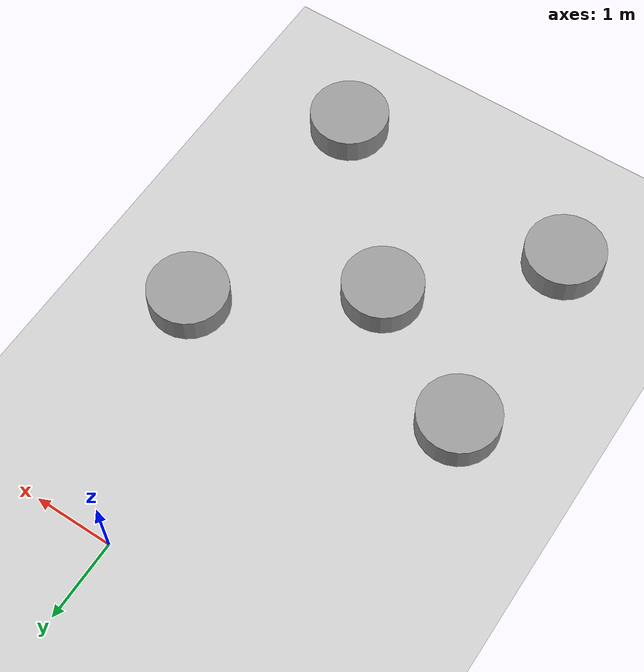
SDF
<sdf version="1.6">
 <world name="default">
  <light name="sun" type="directional">
   <pose>0 0 10 0 -0 0</pose>
   <diffuse>0.8 0.8 0.8 1</diffuse>
   <specular>0.2 0.2 0.2 1</specular>
   <attenuation>
    <range>1000</range>
    <constant>0.9</constant>
    <linear>0.01</linear>
    <quadratic>0.001</quadratic>
   </attenuation>
   <direction>0 0.5 -0.9</direction>
  </light>
  <light name="point_light" type="point">
   <pose>0 -0.377195 6.59868 0 -0 0</pose>
   <diffuse>0.784314 0.784314 0.784314 1</diffuse>
   <specular>0.0980392 0.0980392 0.0980392 1</specular>
   <attenuation>
    <range>50</range>
    <constant>0.8</constant>
    <linear>0</linear>
    <quadratic>0.001</quadratic>
   </attenuation>
   <cast_shadows>0</cast_shadows>
   <direction>0 0 -1</direction>
  </light>
  <physics name="default_physics" default="0" type="ode">
   <real_time_update_rate>7</real_time_update_rate>
   <max_step_size>0.005</max_step_size>
   <real_time_factor>1</real_time_factor>
   <ode>
    <solver>
     <type>quick</type>
     <iters>150</iters>
     <precon_iters>0</precon_iters>
     <sor>1.4</sor>
     <use_dynamic_moi_rescaling>1</use_dynamic_moi_rescaling>
    </solver>
    <constraints>
     <cfm>1e-05</cfm>
     <erp>0.2</erp>
     <contact_max_correcting_vel>2000</contact_max_correcting_vel>
     <contact_surface_layer>0.01</contact_surface_layer>
    </constraints>
   </ode>
  </physics>
  <model name="ground_plane">
   <static>1</static>
   <link name="link">
    <collision name="collision">
     <geometry><plane><normal>0 0 1</normal><size>100 100</size></plane></geometry>
     <surface>
      <contact><collide_bitmask>65535</collide_bitmask></contact>
      <friction><ode><mu>100</mu><mu2>50</mu2></ode></friction>
     </surface>
    </collision>
    <visual name="visual">
     <cast_shadows>0</cast_shadows>
     <geometry><plane><normal>0 0 1</normal><size>100 100</size></plane></geometry>
     <material>
      <script><uri>file://media/materials/scripts/gazebo.material</uri><name>Gazebo/Grey</name></script>
     </material>
    </visual>
   </link>
  </model>
  <gravity>0 0 -9.8</gravity>
  <magnetic_field>6e-06 2.3e-05 -4.2e-05</magnetic_field>
  <atmosphere type="adiabatic"/>
  <scene><ambient>0.4 0.4 0.4 1</ambient><background>0.7 0.7 0.7 1</background><shadows>1</shadows></scene>
  <audio><device>default</device></audio>
  <spherical_coordinates>
   <surface_model>EARTH_WGS84</surface_model>
   <latitude_deg>0</latitude_deg>
   <longitude_deg>0</longitude_deg>
   <elevation>0</elevation>
   <heading_deg>0</heading_deg>
  </spherical_coordinates>
  <model name="unit_cylinder">
   <pose>-2.45654 -5.83548 0.366494 0 -0 0</pose>
   <link name="link">
    <inertial>
     <mass>1</mass>
     <inertia><ixx>0.145833</ixx><ixy>0</ixy><ixz>0</ixz><iyy>0.145833</iyy><iyz>0</iyz><izz>0.125</izz></inertia>
    </inertial>
    <collision name="collision">
     <geometry><cylinder><radius>0.5</radius><length>0.353408</length></cylinder></geometry>
    </collision>
    <visual name="visual">
     <geometry><cylinder><radius>0.5</radius><length>0.353408</length></cylinder></geometry>
     <material>
      <script><name>Gazebo/Grey</name><uri>file://media/materials/scripts/gazebo.material</uri></script>
     </material>
    </visual>
   </link>
  </model>
  <model name="unit_cylinder_clone">
   <pose>-2.51234 -3.27412 0.366494 0 -0 0</pose>
   <link name="link">
    <inertial>
     <mass>1</mass>
     <inertia><ixx>0.145833</ixx><ixy>0</ixy><ixz>0</ixz><iyy>0.145833</iyy><iyz>0</iyz><izz>0.125</izz></inertia>
    </inertial>
    <collision name="collision">
     <geometry><cylinder><radius>0.5</radius><length>0.353408</length></cylinder></geometry>
    </collision>
    <visual name="visual">
     <geometry><cylinder><radius>0.5</radius><length>0.353408</length></cylinder></geometry>
     <material>
      <script><name>Gazebo/Grey</name><uri>file://media/materials/scripts/gazebo.material</uri></script>
     </material>
    </visual>
   </link>
  </model>
  <model name="unit_cylinder_clone_0">
   <pose>0.812939 -6.13093 0.366494 0 -0 0</pose>
   <link name="link">
    <inertial>
     <mass>1</mass>
     <inertia><ixx>0.145833</ixx><ixy>0</ixy><ixz>0</ixz><iyy>0.145833</iyy><iyz>0</iyz><izz>0.125</izz></inertia>
    </inertial>
    <collision name="collision">
     <geometry><cylinder><radius>0.5</radius><length>0.353408</length></cylinder></geometry>
    </collision>
    <visual name="visual">
     <geometry><cylinder><radius>0.5</radius><length>0.353408</length></cylinder></geometry>
     <material>
      <script><name>Gazebo/Grey</name><uri>file://media/materials/scripts/gazebo.material</uri></script>
     </material>
    </visual>
   </link>
  </model>
  <model name="unit_cylinder_clone_1">
   <pose>-0.876161 -4.25389 0.366494 0 -0 0</pose>
   <link name="link">
    <inertial>
     <mass>1</mass>
     <inertia><ixx>0.145833</ixx><ixy>0</ixy><ixz>0</ixz><iyy>0.145833</iyy><iyz>0</iyz><izz>0.125</izz></inertia>
    </inertial>
    <collision name="collision">
     <geometry><cylinder><radius>0.5</radius><length>0.353408</length></cylinder></geometry>
    </collision>
    <visual name="visual">
     <geometry><cylinder><radius>0.5</radius><length>0.353408</length></cylinder></geometry>
     <material>
      <script><name>Gazebo/Grey</name><uri>file://media/materials/scripts/gazebo.material</uri></script>
     </material>
    </visual>
   </link>
  </model>
  <model name="unit_cylinder_clone_2">
   <pose>0.999019 -2.92557 0.3665 7e-06 -8e-06 -1e-06</pose>
   <link name="link">
    <inertial>
     <mass>1</mass>
     <inertia><ixx>0.145833</ixx><ixy>0</ixy><ixz>0</ixz><iyy>0.145833</iyy><iyz>0</iyz><izz>0.125</izz></inertia>
    </inertial>
    <collision name="collision">
     <geometry><cylinder><radius>0.5</radius><length>0.353408</length></cylinder></geometry>
    </collision>
    <visual name="visual">
     <geometry><cylinder><radius>0.5</radius><length>0.353408</length></cylinder></geometry>
     <material>
      <script><name>Gazebo/Grey</name><uri>file://media/materials/scripts/gazebo.material</uri></script>
     </material>
    </visual>
   </link>
  </model>
 </world>
</sdf>
